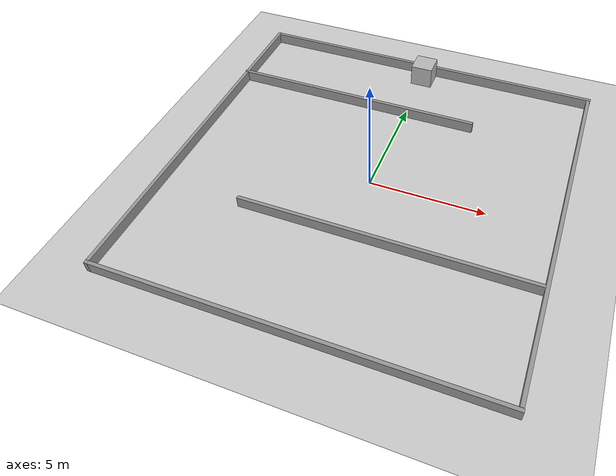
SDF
<sdf version='1.7'>
  <world name='default'>
    <light name='sun' type='directional'>
      <cast_shadows>1</cast_shadows>
      <pose>0 0 10 0 -0 0</pose>
      <diffuse>0.8 0.8 0.8 1</diffuse>
      <specular>0.2 0.2 0.2 1</specular>
      <attenuation>
        <range>1000</range>
        <constant>0.9</constant>
        <linear>0.01</linear>
        <quadratic>0.001</quadratic>
      </attenuation>
      <direction>-0.5 0.1 -0.9</direction>
      <spot>
        <inner_angle>0</inner_angle>
        <outer_angle>0</outer_angle>
        <falloff>0</falloff>
      </spot>
    </light>
    <model name='ground_plane'>
      <static>1</static>
      <link name='link'>
        <collision name='collision'>
          <geometry>
            <plane>
              <normal>0 0 1</normal>
              <size>100 100</size>
            </plane>
          </geometry>
          <surface>
            <contact>
              <collide_bitmask>65535</collide_bitmask>
              <ode/>
            </contact>
            <friction>
              <ode>
                <mu>100</mu>
                <mu2>50</mu2>
              </ode>
              <torsional>
                <ode/>
              </torsional>
            </friction>
            <bounce/>
          </surface>
          <max_contacts>10</max_contacts>
        </collision>
        <visual name='visual'>
          <cast_shadows>0</cast_shadows>
          <geometry>
            <plane>
              <normal>0 0 1</normal>
              <size>100 100</size>
            </plane>
          </geometry>
          <material>
            <script>
              <uri>file://media/materials/scripts/gazebo.material</uri>
              <name>Gazebo/Grey</name>
            </script>
          </material>
        </visual>
        <self_collide>0</self_collide>
        <enable_wind>0</enable_wind>
        <kinematic>0</kinematic>
      </link>
    </model>
    <gravity>0 0 -9.8</gravity>
    <magnetic_field>6e-06 2.3e-05 -4.2e-05</magnetic_field>
    <atmosphere type='adiabatic'/>
    <physics type='ode'>
      <max_step_size>0.001</max_step_size>
      <real_time_factor>1</real_time_factor>
      <real_time_update_rate>1000</real_time_update_rate>
    </physics>
    <scene>
      <ambient>0.4 0.4 0.4 1</ambient>
      <background>0.7 0.7 0.7 1</background>
      <shadows>1</shadows>
    </scene>
    <wind/>
    <spherical_coordinates>
      <surface_model>EARTH_WGS84</surface_model>
      <latitude_deg>0</latitude_deg>
      <longitude_deg>0</longitude_deg>
      <elevation>0</elevation>
      <heading_deg>0</heading_deg>
    </spherical_coordinates>
    <model name='maze'>
      <pose>-0.142914 0.196813 0 0 -0 0</pose>
      <link name='Wall_1'>
        <collision name='Wall_1_Collision'>
          <geometry>
            <box>
              <size>16 0.15 0.5</size>
            </box>
          </geometry>
          <pose>0 0 0.25 0 -0 0</pose>
          <max_contacts>10</max_contacts>
          <surface>
            <contact>
              <ode/>
            </contact>
            <bounce/>
            <friction>
              <torsional>
                <ode/>
              </torsional>
              <ode/>
            </friction>
          </surface>
        </collision>
        <visual name='Wall_1_Visual'>
          <pose>0 0 0.25 0 -0 0</pose>
          <geometry>
            <box>
              <size>16 0.15 0.5</size>
            </box>
          </geometry>
          <material>
            <script>
              <uri>file://media/materials/scripts/gazebo.material</uri>
              <name>Gazebo/Grey</name>
            </script>
            <ambient>1 1 1 1</ambient>
          </material>
          <meta>
            <layer>0</layer>
          </meta>
        </visual>
        <pose>8.03961 0.019348 0 0 -0 -1.5708</pose>
        <self_collide>0</self_collide>
        <enable_wind>0</enable_wind>
        <kinematic>0</kinematic>
      </link>
      <link name='Wall_10'>
        <collision name='Wall_10_Collision'>
          <geometry>
            <box>
              <size>11.5 0.15 0.5</size>
            </box>
          </geometry>
          <pose>0 0 0.25 0 -0 0</pose>
          <max_contacts>10</max_contacts>
          <surface>
            <contact>
              <ode/>
            </contact>
            <bounce/>
            <friction>
              <torsional>
                <ode/>
              </torsional>
              <ode/>
            </friction>
          </surface>
        </collision>
        <visual name='Wall_10_Visual'>
          <pose>0 0 0.25 0 -0 0</pose>
          <geometry>
            <box>
              <size>11.5 0.15 0.5</size>
            </box>
          </geometry>
          <material>
            <script>
              <uri>file://media/materials/scripts/gazebo.material</uri>
              <name>Gazebo/Grey</name>
            </script>
            <ambient>1 1 1 1</ambient>
          </material>
          <meta>
            <layer>0</layer>
          </meta>
        </visual>
        <pose>-2.38666 4.49697 0 0 -0 0</pose>
        <self_collide>0</self_collide>
        <enable_wind>0</enable_wind>
        <kinematic>0</kinematic>
      </link>
      <link name='Wall_12'>
        <collision name='Wall_12_Collision'>
          <geometry>
            <box>
              <size>12.5 0.15 0.5</size>
            </box>
          </geometry>
          <pose>0 0 0.25 0 -0 0</pose>
          <max_contacts>10</max_contacts>
          <surface>
            <contact>
              <ode/>
            </contact>
            <bounce/>
            <friction>
              <torsional>
                <ode/>
              </torsional>
              <ode/>
            </friction>
          </surface>
        </collision>
        <visual name='Wall_12_Visual'>
          <pose>0 0 0.25 0 -0 0</pose>
          <geometry>
            <box>
              <size>12.5 0.15 0.5</size>
            </box>
          </geometry>
          <material>
            <script>
              <uri>file://media/materials/scripts/gazebo.material</uri>
              <name>Gazebo/Grey</name>
            </script>
            <ambient>1 1 1 1</ambient>
          </material>
          <meta>
            <layer>0</layer>
          </meta>
        </visual>
        <pose>1.8242 -3.23004 0 0 -0 3.14159</pose>
        <self_collide>0</self_collide>
        <enable_wind>0</enable_wind>
        <kinematic>0</kinematic>
      </link>
      <link name='Wall_3'>
        <collision name='Wall_3_Collision'>
          <geometry>
            <box>
              <size>16.25 0.15 0.5</size>
            </box>
          </geometry>
          <pose>0 0 0.25 0 -0 0</pose>
          <max_contacts>10</max_contacts>
          <surface>
            <contact>
              <ode/>
            </contact>
            <bounce/>
            <friction>
              <torsional>
                <ode/>
              </torsional>
              <ode/>
            </friction>
          </surface>
        </collision>
        <visual name='Wall_3_Visual'>
          <pose>0 0 0.25 0 -0 0</pose>
          <geometry>
            <box>
              <size>16.25 0.15 0.5</size>
            </box>
          </geometry>
          <material>
            <script>
              <uri>file://media/materials/scripts/gazebo.material</uri>
              <name>Gazebo/Grey</name>
            </script>
            <ambient>1 1 1 1</ambient>
          </material>
          <meta>
            <layer>0</layer>
          </meta>
        </visual>
        <pose>-8.04173 -0.007064 0 0 -0 1.5708</pose>
        <self_collide>0</self_collide>
        <enable_wind>0</enable_wind>
        <kinematic>0</kinematic>
      </link>
      <link name='Wall_5'>
        <collision name='Wall_5_Collision'>
          <geometry>
            <box>
              <size>16.25 0.15 0.5</size>
            </box>
          </geometry>
          <pose>0 0 0.25 0 -0 0</pose>
          <max_contacts>10</max_contacts>
          <surface>
            <contact>
              <ode/>
            </contact>
            <bounce/>
            <friction>
              <torsional>
                <ode/>
              </torsional>
              <ode/>
            </friction>
          </surface>
        </collision>
        <visual name='Wall_5_Visual'>
          <pose>0 0 0.25 0 -0 0</pose>
          <geometry>
            <box>
              <size>16.25 0.15 0.5</size>
            </box>
          </geometry>
          <material>
            <script>
              <uri>file://media/materials/scripts/gazebo.material</uri>
              <name>Gazebo/Grey</name>
            </script>
            <ambient>1 1 1 1</ambient>
          </material>
          <meta>
            <layer>0</layer>
          </meta>
        </visual>
        <pose>0.011663 8.05706 0 0 -0 3.14159</pose>
        <self_collide>0</self_collide>
        <enable_wind>0</enable_wind>
        <kinematic>0</kinematic>
      </link>
      <link name='Wall_7'>
        <collision name='Wall_7_Collision'>
          <geometry>
            <box>
              <size>16.25 0.15 0.5</size>
            </box>
          </geometry>
          <pose>0 0 0.25 0 -0 0</pose>
          <max_contacts>10</max_contacts>
          <surface>
            <contact>
              <ode/>
            </contact>
            <bounce/>
            <friction>
              <torsional>
                <ode/>
              </torsional>
              <ode/>
            </friction>
          </surface>
        </collision>
        <visual name='Wall_7_Visual'>
          <pose>0 0 0.25 0 -0 0</pose>
          <geometry>
            <box>
              <size>16.25 0.15 0.5</size>
            </box>
          </geometry>
          <material>
            <script>
              <uri>file://media/materials/scripts/gazebo.material</uri>
              <name>Gazebo/Grey</name>
            </script>
            <ambient>1 1 1 1</ambient>
          </material>
          <meta>
            <layer>0</layer>
          </meta>
        </visual>
        <pose>0.008267 -8.05706 0 0 -0 0</pose>
        <self_collide>0</self_collide>
        <enable_wind>0</enable_wind>
        <kinematic>0</kinematic>
      </link>
      <static>1</static>
    </model>

<model name='charger'>
  <static>true</static>
  <link name='charger_link'>
    <collision name='charger_collision'>
      <geometry>
        <box>
          <size>1 1 1</size>
        </box>
      </geometry>
    </collision>
    <visual name='charger_visual'>
      <geometry>
        <box>
          <size>1 1 1</size>
        </box>
      </geometry>
      <material>
        <shader type='vertex'>
          <normal_map>__default__</normal_map>
        </shader>
        <texture>
          <diffuse>
            <uri>file://../models/aruco_markers/aruco_marker_42.png</uri>
          </diffuse>
        </texture>
      </material>
    </visual>
  </link>
  <pose>0 7.7 0.5 0 0 0</pose>
</model>

    <gui fullscreen='0'>
      <camera name='user_camera'>
        <pose>36.1533 -34.3941 13.0882 0 0.275643 2.35619</pose>
        <view_controller>orbit</view_controller>
        <projection_type>perspective</projection_type>
      </camera>
    </gui>
  </world>
</sdf>
